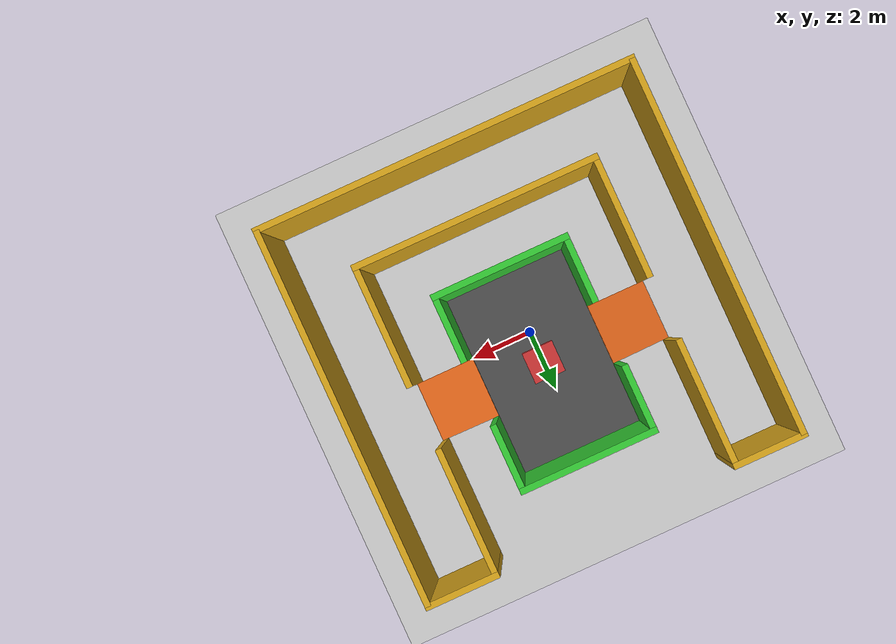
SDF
<?xml version='1.0' encoding='utf-8'?>
<sdf version='1.9'>
  <world name='hospital_carrion_world'>
    <physics name='1ms' type='ignored'>
      <max_step_size>0.001</max_step_size>
      <real_time_factor>1</real_time_factor>
      <real_time_update_rate>1000</real_time_update_rate>
    </physics>
    <plugin name='gz::sim::systems::Physics' filename='ignition-gazebo-physics-system'/>
    <plugin name='gz::sim::systems::UserCommands' filename='ignition-gazebo-user-commands-system'/>
    <plugin name='gz::sim::systems::SceneBroadcaster' filename='ignition-gazebo-scene-broadcaster-system'/>
    <plugin name='gz::sim::systems::Contact' filename='ignition-gazebo-contact-system'/>
    <gravity>0 0 -9.8</gravity>

    <scene>
      <ambient>0.5 0.5 0.5 1</ambient>
      <background>0.7 0.7 0.7 1</background>
      <shadows>true</shadows>
    </scene>

    <light name='sun' type='directional'>
      <pose>0 0 10 0 0 0</pose>
      <cast_shadows>true</cast_shadows>
      <direction>-0.5 0.1 -0.9</direction>
      <diffuse>0.8 0.8 0.8 1</diffuse>
      <specular>0.2 0.2 0.2 1</specular>
    </light>

    <model name='ground_plane'>
      <static>true</static>
      <link name='link'>
        <collision name='collision'><geometry><plane><normal>0 0 1</normal><size>100 100</size></plane></geometry></collision>
        <visual name='visual'>
          <geometry><plane><normal>0 0 1</normal><size>100 100</size></plane></geometry>
          <material><ambient>0.8 0.8 0.8 1</ambient><diffuse>0.8 0.8 0.8 1</diffuse></material>
        </visual>
      </link>
    </model>

    <model name='u_shape_corridors'>
      <static>true</static>
      <link name='walls'>
        <visual name='out_l'><pose>-6.1 0 1 0 0 0</pose><geometry><box><size>0.2 12.2 2</size></box></geometry><material><ambient>0.85 0.65 0.1 1</ambient><diffuse>0.85 0.65 0.1 1</diffuse></material></visual>
        <collision name='cout_l'><pose>-6.1 0 1 0 0 0</pose><geometry><box><size>0.2 12.2 2</size></box></geometry></collision>

        <visual name='out_r'><pose>6.1 0 1 0 0 0</pose><geometry><box><size>0.2 12.2 2</size></box></geometry><material><ambient>0.85 0.65 0.1 1</ambient><diffuse>0.85 0.65 0.1 1</diffuse></material></visual>
        <collision name='cout_r'><pose>6.1 0 1 0 0 0</pose><geometry><box><size>0.2 12.2 2</size></box></geometry></collision>

        <visual name='out_b'><pose>0 -6.1 1 0 0 0</pose><geometry><box><size>12.4 0.2 2</size></box></geometry><material><ambient>0.85 0.65 0.1 1</ambient><diffuse>0.85 0.65 0.1 1</diffuse></material></visual>
        <collision name='cout_b'><pose>0 -6.1 1 0 0 0</pose><geometry><box><size>12.4 0.2 2</size></box></geometry></collision>

        <visual name='out_t_l'><pose>-5 6.1 1 0 0 0</pose><geometry><box><size>2.4 0.2 2</size></box></geometry><material><ambient>0.85 0.65 0.1 1</ambient><diffuse>0.85 0.65 0.1 1</diffuse></material></visual>
        <collision name='cout_t_l'><pose>-5 6.1 1 0 0 0</pose><geometry><box><size>2.4 0.2 2</size></box></geometry></collision>
        <visual name='out_t_r'><pose>5 6.1 1 0 0 0</pose><geometry><box><size>2.4 0.2 2</size></box></geometry><material><ambient>0.85 0.65 0.1 1</ambient><diffuse>0.85 0.65 0.1 1</diffuse></material></visual>
        <collision name='cout_t_r'><pose>5 6.1 1 0 0 0</pose><geometry><box><size>2.4 0.2 2</size></box></geometry></collision>

        <visual name='in_b'><pose>0 -3.9 1 0 0 0</pose><geometry><box><size>8 0.2 2</size></box></geometry><material><ambient>0.85 0.65 0.1 1</ambient><diffuse>0.85 0.65 0.1 1</diffuse></material></visual>
        <collision name='cin_b'><pose>0 -3.9 1 0 0 0</pose><geometry><box><size>8 0.2 2</size></box></geometry></collision>

        <visual name='in_l_low'><pose>-3.9 -2 1 0 0 0</pose><geometry><box><size>0.2 4 2</size></box></geometry><material><ambient>0.85 0.65 0.1 1</ambient><diffuse>0.85 0.65 0.1 1</diffuse></material></visual>
        <collision name='cin_l_low'><pose>-3.9 -2 1 0 0 0</pose><geometry><box><size>0.2 4 2</size></box></geometry></collision>

        <visual name='in_l_up'><pose>-3.9 4 1 0 0 0</pose><geometry><box><size>0.2 4 2</size></box></geometry><material><ambient>0.85 0.65 0.1 1</ambient><diffuse>0.85 0.65 0.1 1</diffuse></material></visual>
        <collision name='cin_l_up'><pose>-3.9 4 1 0 0 0</pose><geometry><box><size>0.2 4 2</size></box></geometry></collision>

        <visual name='in_r_low'><pose>3.9 -2 1 0 0 0</pose><geometry><box><size>0.2 4 2</size></box></geometry><material><ambient>0.85 0.65 0.1 1</ambient><diffuse>0.85 0.65 0.1 1</diffuse></material></visual>
        <collision name='cin_r_low'><pose>3.9 -2 1 0 0 0</pose><geometry><box><size>0.2 4 2</size></box></geometry></collision>

        <visual name='in_r_up'><pose>3.9 4 1 0 0 0</pose><geometry><box><size>0.2 4 2</size></box></geometry><material><ambient>0.85 0.65 0.1 1</ambient><diffuse>0.85 0.65 0.1 1</diffuse></material></visual>
        <collision name='cin_r_up'><pose>3.9 4 1 0 0 0</pose><geometry><box><size>0.2 4 2</size></box></geometry></collision>
      </link>
    </model>

    <model name='elevated_center_room'>
      <static>true</static>
      <link name='center_link'>
        <visual name='platform'><pose>0 1 0.15 0 0 0</pose><geometry><box><size>4 6 0.3</size></box></geometry><material><ambient>0.3 0.3 0.3 1</ambient><diffuse>0.3 0.3 0.3 1</diffuse></material></visual>
        <collision name='cplatform'><pose>0 1 0.15 0 0 0</pose><geometry><box><size>4 6 0.3</size></box></geometry></collision>

        <visual name='ramp_left'><pose>-3 1 0.15 0 -0.1488 0</pose><geometry><box><size>2.022 2 0.05</size></box></geometry><material><ambient>0.9 0.4 0.1 1</ambient><diffuse>0.9 0.4 0.1 1</diffuse></material></visual>
        <collision name='cramp_left'><pose>-3 1 0.15 0 -0.1488 0</pose><geometry><box><size>2.022 2 0.05</size></box></geometry></collision>

        <visual name='ramp_right'><pose>3 1 0.15 0 0.1488 0</pose><geometry><box><size>2.022 2 0.05</size></box></geometry><material><ambient>0.9 0.4 0.1 1</ambient><diffuse>0.9 0.4 0.1 1</diffuse></material></visual>
        <collision name='cramp_right'><pose>3 1 0.15 0 0.1488 0</pose><geometry><box><size>2.022 2 0.05</size></box></geometry></collision>

        <visual name='cr_top'><pose>0 4.1 1.3 0 0 0</pose><geometry><box><size>4.4 0.2 2</size></box></geometry><material><ambient>0.2 0.8 0.2 1</ambient><diffuse>0.2 0.8 0.2 1</diffuse></material></visual>
        <collision name='ccr_top'><pose>0 4.1 1.3 0 0 0</pose><geometry><box><size>4.4 0.2 2</size></box></geometry></collision>

        <visual name='cr_bot'><pose>0 -2.1 1.3 0 0 0</pose><geometry><box><size>4.4 0.2 2</size></box></geometry><material><ambient>0.2 0.8 0.2 1</ambient><diffuse>0.2 0.8 0.2 1</diffuse></material></visual>
        <collision name='ccr_bot'><pose>0 -2.1 1.3 0 0 0</pose><geometry><box><size>4.4 0.2 2</size></box></geometry></collision>

        <visual name='cr_l_up'><pose>-2.1 3 1.3 0 0 0</pose><geometry><box><size>0.2 2 2</size></box></geometry><material><ambient>0.2 0.8 0.2 1</ambient><diffuse>0.2 0.8 0.2 1</diffuse></material></visual>
        <collision name='ccr_l_up'><pose>-2.1 3 1.3 0 0 0</pose><geometry><box><size>0.2 2 2</size></box></geometry></collision>

        <visual name='cr_l_low'><pose>-2.1 -1 1.3 0 0 0</pose><geometry><box><size>0.2 2 2</size></box></geometry><material><ambient>0.2 0.8 0.2 1</ambient><diffuse>0.2 0.8 0.2 1</diffuse></material></visual>
        <collision name='ccr_l_low'><pose>-2.1 -1 1.3 0 0 0</pose><geometry><box><size>0.2 2 2</size></box></geometry></collision>

        <visual name='cr_r_up'><pose>2.1 3 1.3 0 0 0</pose><geometry><box><size>0.2 2 2</size></box></geometry><material><ambient>0.2 0.8 0.2 1</ambient><diffuse>0.2 0.8 0.2 1</diffuse></material></visual>
        <collision name='ccr_r_up'><pose>2.1 3 1.3 0 0 0</pose><geometry><box><size>0.2 2 2</size></box></geometry></collision>

        <visual name='cr_r_low'><pose>2.1 -1 1.3 0 0 0</pose><geometry><box><size>0.2 2 2</size></box></geometry><material><ambient>0.2 0.8 0.2 1</ambient><diffuse>0.2 0.8 0.2 1</diffuse></material></visual>
        <collision name='ccr_r_low'><pose>2.1 -1 1.3 0 0 0</pose><geometry><box><size>0.2 2 2</size></box></geometry></collision>

        <visual name='obstacle_box'><pose>0 1 0.8 0 0 0</pose><geometry><box><size>1 1 1</size></box></geometry><material><ambient>0.8 0.2 0.2 1</ambient><diffuse>0.8 0.2 0.2 1</diffuse></material></visual>
        <collision name='cobstacle_box'><pose>0 1 0.8 0 0 0</pose><geometry><box><size>1 1 1</size></box></geometry></collision>
      </link>
    </model>

  </world>
</sdf>
